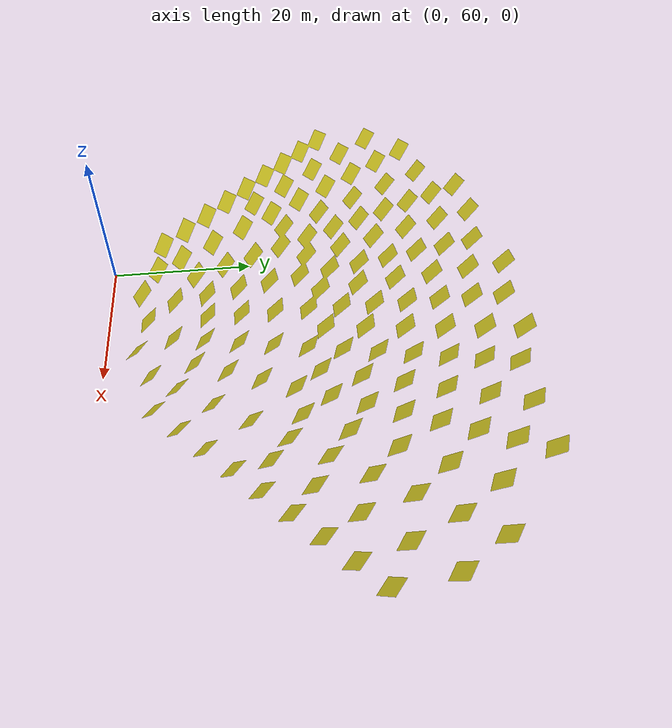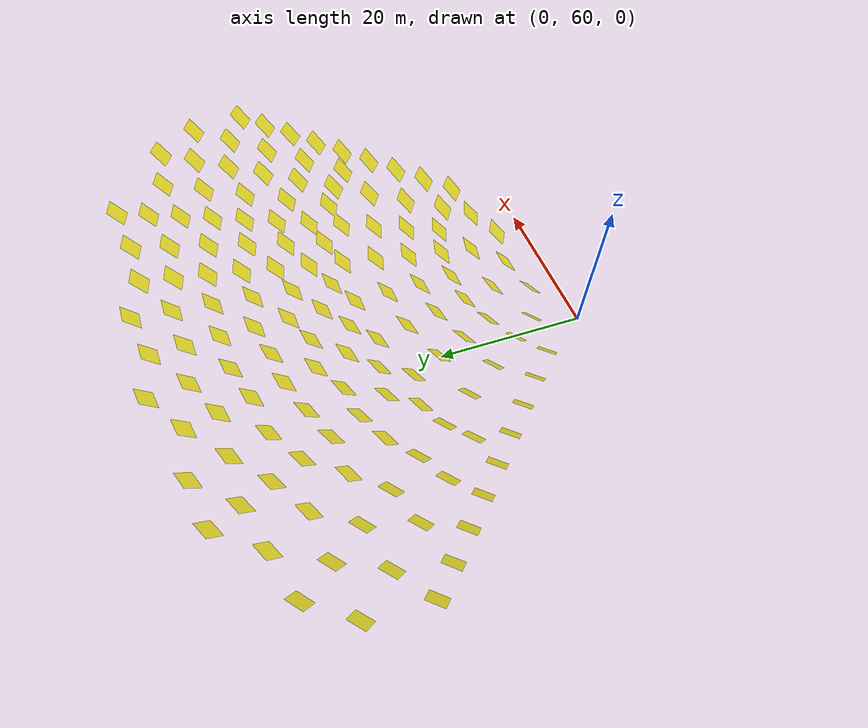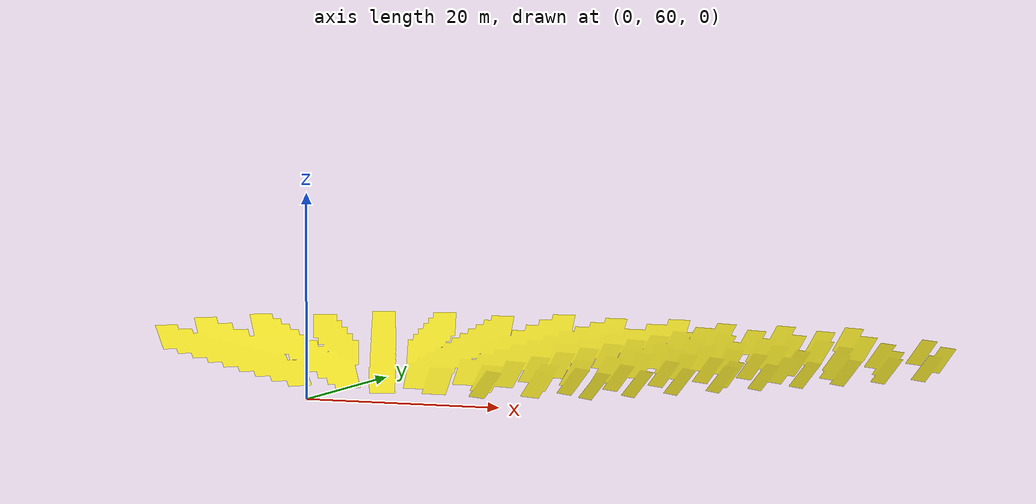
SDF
<?xml version='1.0'?>
<sdf version="1.4">
  <model name="solar_plant">
    <pose>0 0 0 0 0 0</pose>
    <static>true</static>
    <link name="link_plant">
      <visual name="visual">
        <geometry>
          <mesh>
            <uri>model://solar_plant/meshes/solarPlant.dae</uri>
            <scale>1 1 1</scale>
          </mesh>
        </geometry>
        <material>
          <script>
            <uri>file://media/materials/scripts/gazebo.material</uri>
            <name>Gazebo/DarkYellow</name>
          </script>
        </material>
      </visual>
    </link>

  </model>
</sdf>
